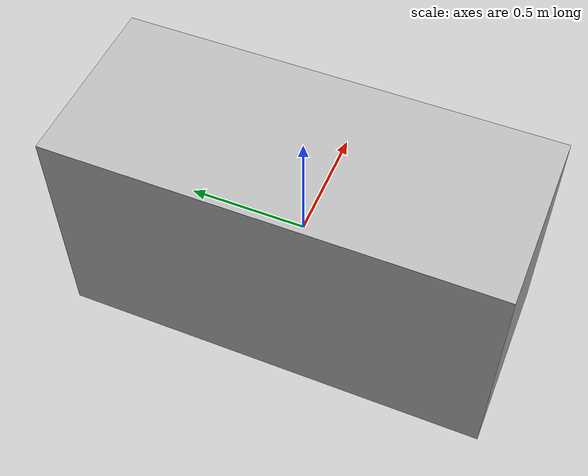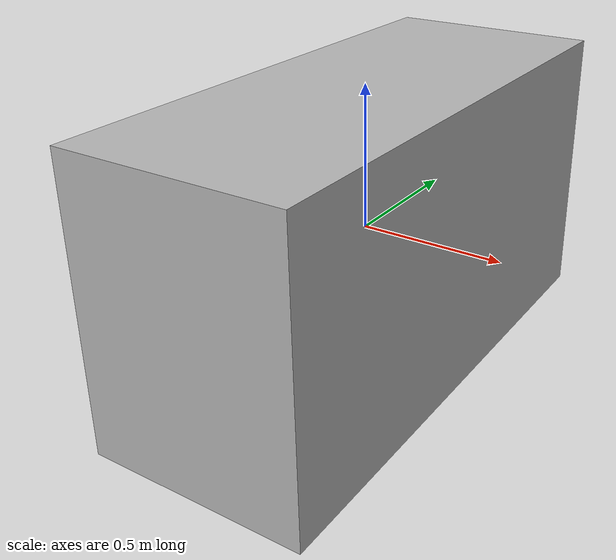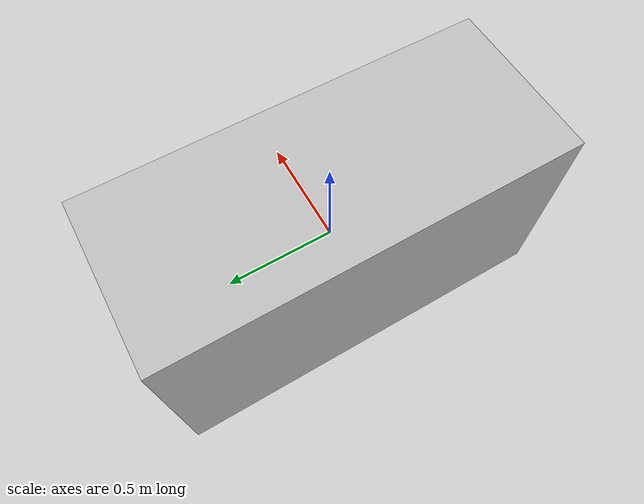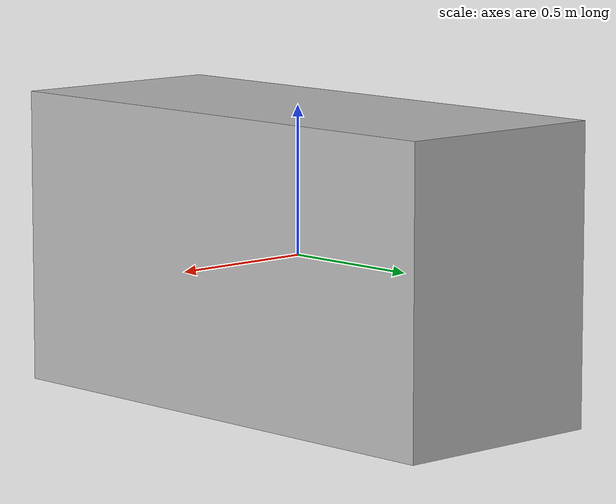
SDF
<?xml version='1.0'?>
<sdf version='1.4'>
  <model name="rectangle">

    <link name="base">
      <pose>0 0 0 0 0 0</pose>
      <inertial>
        <mass>0.01</mass>
      </inertial>
    </link>
    <link name="link_prismatic_x">
      <pose>0 0 0 0 0 0</pose>
      <inertial>
        <mass>0.01</mass>
      </inertial>
    </link>
    <link name="link_prismatic_y">
      <pose>0 0 0 0 0 0</pose>
      <inertial>
        <mass>0.01</mass>
      </inertial>
    </link>
    <link name="link_revolute">
      <pose>0 0 0 0 0 0</pose>
      <inertial>
        <mass>0.01</mass>
      </inertial>
    </link>

    <joint name="prismatic_x" type="prismatic">
      <parent>base</parent>
      <child>link_prismatic_x</child>
      <axis>
        <xyz>1 0 0</xyz>
      </axis>
    </joint>
    <joint name="prismatic_y" type="prismatic">
      <parent>link_prismatic_x</parent>
      <child>link_prismatic_y</child>
      <axis>
        <xyz>0 1 0</xyz>
      </axis>
    </joint>

    <joint name="revolute" type="continuous">
      <parent>link_prismatic_y</parent>
      <child>link_revolute</child>
      <axis>
        <xyz>0 0 1</xyz>
      </axis>
    </joint>

    <joint name="connector" type="fixed">
      <parent>link_revolute</parent>
      <child>thing</child>
    </joint>

    <link name='thing'>
      <pose>0 0 0 0 -1.57079633 0</pose>
      <inertial>
        <mass>1.0</mass>
      </inertial>
      <collision name='collision'>
        <geometry>
          <mesh>
            <scale>1 1 1</scale>
            <uri>package://symmetries/models/prisms/rectangular_prism.obj</uri>
          </mesh>
        </geometry>
      </collision>
      <visual name='visual'>
        <geometry>
          <mesh>
            <scale>1 1 1</scale>
            <uri>package://symmetries/models/prisms/rectangular_prism.obj</uri>
          </mesh>
        </geometry>
      </visual>
    </link>

  </model>
</sdf>
